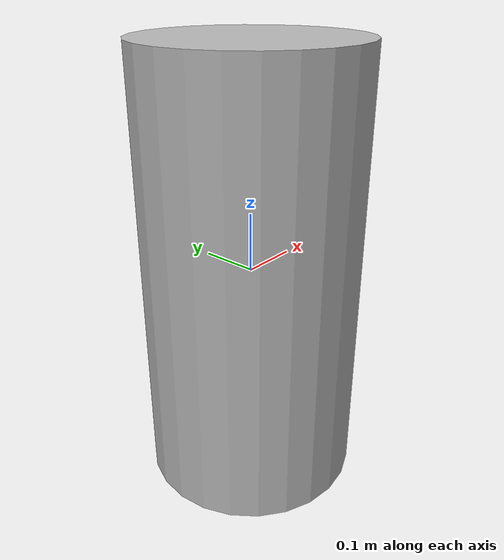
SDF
<?xml version="1.0"?>
<sdf version="1.6">
  <model name="reo2016/hallway_trashbin">
    <link name="1_link">
      <collision name="1_col">
        <geometry>
          <cylinder>
            <length>0.75</length>
            <radius>0.185</radius>
          </cylinder>
        </geometry>
      </collision>
      <visual name="1_vis">
        <geometry>
          <cylinder>
            <length>0.75</length>
            <radius>0.185</radius>
          </cylinder>
        </geometry>
      </visual>
      <pose>0 0 0 0 0 0</pose>
    </link>
    <static>true</static>
  </model>
</sdf>
